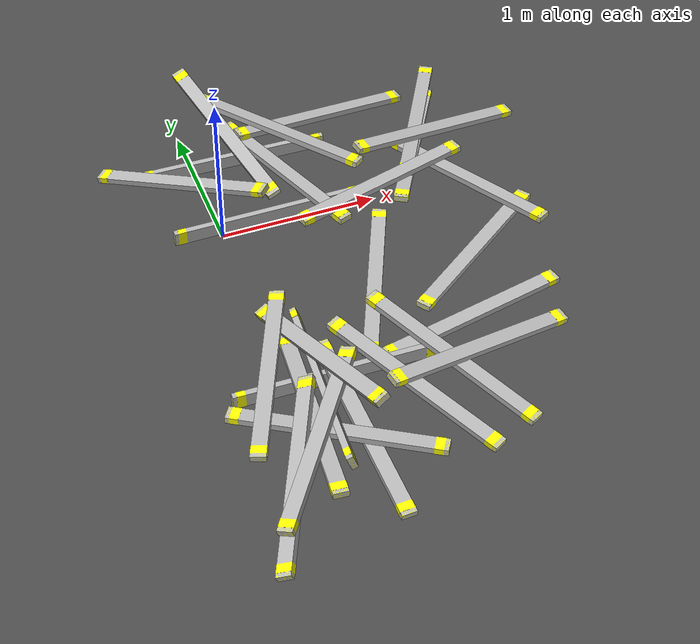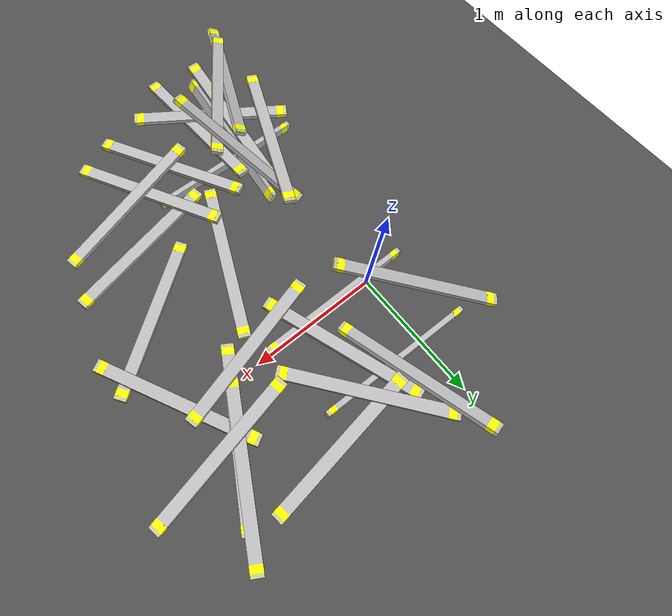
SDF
<sdf version="1.6">
 <world name="default">
  <model name="ground_plane">
   <static>1</static>
   <link name="link">
    <collision name="collision">
     <geometry><plane><normal>0 0 1</normal><size>100 100</size></plane></geometry>
     <surface><friction><ode><mu>100</mu><mu2>50</mu2></ode></friction></surface>
    </collision>
    <visual name="visual">
     <cast_shadows>0</cast_shadows>
     <geometry><plane><normal>0 0 1</normal><size>100 100</size></plane></geometry>
     <material>
      <script><uri>file://media/materials/scripts/gazebo.material</uri><name>Gazebo/Grey</name></script>
     </material>
    </visual>
   </link>
  </model>
  <model name="asphalt_plane">
   <static>1</static>
   <link name="link">
    <collision name="collision"><geometry><box><size>20 20 0.1</size></box></geometry></collision>
    <visual name="visual">
     <cast_shadows>0</cast_shadows>
     <geometry><box><size>20 20 0.1</size></box></geometry>
     <material>
      <script>
       <uri>model://asphalt_plane/materials/scripts</uri>
       <uri>model://asphalt_plane/materials/textures</uri>
       <name>vrc/asphalt</name>
      </script>
     </material>
    </visual>
   </link>
   <pose>0.013797 -0.037077 0 0 -0 0</pose>
  </model>
  <model name="lumber_2x4x48">
   <link name="link">
    <inertial>
     <mass>1.4111</mass>
     <inertia><ixx>0.0011</ixx><ixy>0</ixy><ixz>0</ixz><iyy>0.1771</iyy><iyz>0</iyz><izz>0.1763</izz></inertia>
    </inertial>
    <collision name="collision">
     <geometry><box><size>1.2192 0.038 0.0888</size></box></geometry>
     <surface>
      <bounce><restitution_coefficient>0.01</restitution_coefficient><threshold>5</threshold></bounce>
      <friction><ode><mu>5</mu><mu2>5</mu2></ode></friction>
      <contact>
       <ode>
        <soft_cfm>0.001</soft_cfm>
        <kp>10000</kp>
        <kd>1000</kd>
        <max_vel>0.01</max_vel>
        <min_depth>0.001</min_depth>
       </ode>
      </contact>
     </surface>
    </collision>
    <visual name="visual">
     <geometry><mesh><uri>model://drc_practice_2x4/meshes/2x4x48.dae</uri><scale>1 1 1</scale></mesh></geometry>
    </visual>
   </link>
   <pose>0.299007 -0.012991 0.092909 -0.00932 0.000108 0.00575</pose>
  </model>
  <model name="lumber_2x4x48_clone_1">
   <link name="link">
    <inertial>
     <mass>1.4111</mass>
     <inertia><ixx>0.0011</ixx><ixy>0</ixy><ixz>0</ixz><iyy>0.1771</iyy><iyz>0</iyz><izz>0.1763</izz></inertia>
    </inertial>
    <collision name="collision">
     <geometry><box><size>1.2192 0.038 0.0888</size></box></geometry>
     <surface>
      <bounce><restitution_coefficient>0.01</restitution_coefficient><threshold>5</threshold></bounce>
      <friction><ode><mu>5</mu><mu2>5</mu2></ode></friction>
      <contact>
       <ode>
        <soft_cfm>0.001</soft_cfm>
        <kp>10000</kp>
        <kd>1000</kd>
        <max_vel>0.01</max_vel>
        <min_depth>0.001</min_depth>
       </ode>
      </contact>
     </surface>
    </collision>
    <visual name="visual">
     <geometry><mesh><uri>model://drc_practice_2x4/meshes/2x4x48.dae</uri><scale>1 1 1</scale></mesh></geometry>
    </visual>
   </link>
   <pose>0.25999 0.579244 0.090453 -0.012529 -0.001397 -0.015484</pose>
  </model>
  <model name="lumber_2x4x48_clone_3_clone">
   <link name="link">
    <inertial>
     <mass>1.4111</mass>
     <inertia><ixx>0.0011</ixx><ixy>0</ixy><ixz>0</ixz><iyy>0.1771</iyy><iyz>0</iyz><izz>0.1763</izz></inertia>
    </inertial>
    <collision name="collision">
     <geometry><box><size>1.2192 0.038 0.0888</size></box></geometry>
     <surface>
      <bounce><restitution_coefficient>0.01</restitution_coefficient><threshold>5</threshold></bounce>
      <friction><ode><mu>5</mu><mu2>5</mu2></ode></friction>
      <contact>
       <ode>
        <soft_cfm>0.001</soft_cfm>
        <kp>10000</kp>
        <kd>1000</kd>
        <max_vel>0.01</max_vel>
        <min_depth>0.001</min_depth>
       </ode>
      </contact>
     </surface>
    </collision>
    <visual name="visual">
     <geometry><mesh><uri>model://drc_practice_2x4/meshes/2x4x48.dae</uri><scale>1 1 1</scale></mesh></geometry>
    </visual>
   </link>
   <pose>-0.172854 0.276097 0.26499 1.6423 -0.254557 -0.791706</pose>
  </model>
  <model name="lumber_2x4x48_clone_3_clone_0_clone_0_clone_0">
   <link name="link">
    <inertial>
     <mass>1.4111</mass>
     <inertia><ixx>0.0011</ixx><ixy>0</ixy><ixz>0</ixz><iyy>0.1771</iyy><iyz>0</iyz><izz>0.1763</izz></inertia>
    </inertial>
    <collision name="collision">
     <geometry><box><size>1.2192 0.038 0.0888</size></box></geometry>
     <surface>
      <bounce><restitution_coefficient>0.01</restitution_coefficient><threshold>5</threshold></bounce>
      <friction><ode><mu>5</mu><mu2>5</mu2></ode></friction>
      <contact>
       <ode>
        <soft_cfm>0.001</soft_cfm>
        <kp>10000</kp>
        <kd>1000</kd>
        <max_vel>0.01</max_vel>
        <min_depth>0.001</min_depth>
       </ode>
      </contact>
     </surface>
    </collision>
    <visual name="visual">
     <geometry><mesh><uri>model://drc_practice_2x4/meshes/2x4x48.dae</uri><scale>1 1 1</scale></mesh></geometry>
    </visual>
   </link>
   <pose>0.066796 -1.82478 0.143012 1.62543 0.031886 2.56916</pose>
  </model>
  <model name="lumber_2x4x48_clone_0_clone_0">
   <link name="link">
    <inertial>
     <mass>1.4111</mass>
     <inertia><ixx>0.0011</ixx><ixy>0</ixy><ixz>0</ixz><iyy>0.1771</iyy><iyz>0</iyz><izz>0.1763</izz></inertia>
    </inertial>
    <collision name="collision">
     <geometry><box><size>1.2192 0.038 0.0888</size></box></geometry>
     <surface>
      <bounce><restitution_coefficient>0.01</restitution_coefficient><threshold>5</threshold></bounce>
      <friction><ode><mu>5</mu><mu2>5</mu2></ode></friction>
      <contact>
       <ode>
        <soft_cfm>0.001</soft_cfm>
        <kp>10000</kp>
        <kd>1000</kd>
        <max_vel>0.01</max_vel>
        <min_depth>0.001</min_depth>
       </ode>
      </contact>
     </surface>
    </collision>
    <visual name="visual">
     <geometry><mesh><uri>model://drc_practice_2x4/meshes/2x4x48.dae</uri><scale>1 1 1</scale></mesh></geometry>
    </visual>
   </link>
   <pose>0.227246 -1.40204 0.090241 -0.041537 0.000696 -0.018359</pose>
  </model>
  <model name="lumber_2x4x48_clone_3_clone_0_clone_1_clone_clone">
   <link name="link">
    <inertial>
     <mass>1.4111</mass>
     <inertia><ixx>0.0011</ixx><ixy>0</ixy><ixz>0</ixz><iyy>0.1771</iyy><iyz>0</iyz><izz>0.1763</izz></inertia>
    </inertial>
    <collision name="collision">
     <geometry><box><size>1.2192 0.038 0.0888</size></box></geometry>
     <surface>
      <bounce><restitution_coefficient>0.01</restitution_coefficient><threshold>5</threshold></bounce>
      <friction><ode><mu>5</mu><mu2>5</mu2></ode></friction>
      <contact>
       <ode>
        <soft_cfm>0.001</soft_cfm>
        <kp>10000</kp>
        <kd>1000</kd>
        <max_vel>0.01</max_vel>
        <min_depth>0.001</min_depth>
       </ode>
      </contact>
     </surface>
    </collision>
    <visual name="visual">
     <geometry><mesh><uri>model://drc_practice_2x4/meshes/2x4x48.dae</uri><scale>1 1 1</scale></mesh></geometry>
    </visual>
   </link>
   <pose>0.094337 -1.5196 0.184237 -0.347411 0.075949 1.4809</pose>
  </model>
  <model name="lumber_2x4x48_clone_3_clone_0_clone_clone_0">
   <link name="link">
    <inertial>
     <mass>1.4111</mass>
     <inertia><ixx>0.0011</ixx><ixy>0</ixy><ixz>0</ixz><iyy>0.1771</iyy><iyz>0</iyz><izz>0.1763</izz></inertia>
    </inertial>
    <collision name="collision">
     <geometry><box><size>1.2192 0.038 0.0888</size></box></geometry>
     <surface>
      <bounce><restitution_coefficient>0.01</restitution_coefficient><threshold>5</threshold></bounce>
      <friction><ode><mu>5</mu><mu2>5</mu2></ode></friction>
      <contact>
       <ode>
        <soft_cfm>0.001</soft_cfm>
        <kp>10000</kp>
        <kd>1000</kd>
        <max_vel>0.01</max_vel>
        <min_depth>0.001</min_depth>
       </ode>
      </contact>
     </surface>
    </collision>
    <visual name="visual">
     <geometry><mesh><uri>model://drc_practice_2x4/meshes/2x4x48.dae</uri><scale>1 1 1</scale></mesh></geometry>
    </visual>
   </link>
   <pose>1.39216 -0.712462 0.067236 1.56188 0.000579 0.613629</pose>
  </model>
  <model name="lumber_2x4x48_clone_3_clone_0_clone_1_clone_0">
   <link name="link">
    <inertial>
     <mass>1.4111</mass>
     <inertia><ixx>0.0011</ixx><ixy>0</ixy><ixz>0</ixz><iyy>0.1771</iyy><iyz>0</iyz><izz>0.1763</izz></inertia>
    </inertial>
    <collision name="collision">
     <geometry><box><size>1.2192 0.038 0.0888</size></box></geometry>
     <surface>
      <bounce><restitution_coefficient>0.01</restitution_coefficient><threshold>5</threshold></bounce>
      <friction><ode><mu>5</mu><mu2>5</mu2></ode></friction>
      <contact>
       <ode>
        <soft_cfm>0.001</soft_cfm>
        <kp>10000</kp>
        <kd>1000</kd>
        <max_vel>0.01</max_vel>
        <min_depth>0.001</min_depth>
       </ode>
      </contact>
     </surface>
    </collision>
    <visual name="visual">
     <geometry><mesh><uri>model://drc_practice_2x4/meshes/2x4x48.dae</uri><scale>1 1 1</scale></mesh></geometry>
    </visual>
   </link>
   <pose>0.258197 0.743727 0.194585 1.27514 -0.16935 1.8022</pose>
  </model>
  <model name="lumber_2x4x48_clone_3_clone_0_clone_1_clone_1">
   <link name="link">
    <inertial>
     <mass>1.4111</mass>
     <inertia><ixx>0.0011</ixx><ixy>0</ixy><ixz>0</ixz><iyy>0.1771</iyy><iyz>0</iyz><izz>0.1763</izz></inertia>
    </inertial>
    <collision name="collision">
     <geometry><box><size>1.2192 0.038 0.0888</size></box></geometry>
     <surface>
      <bounce><restitution_coefficient>0.01</restitution_coefficient><threshold>5</threshold></bounce>
      <friction><ode><mu>5</mu><mu2>5</mu2></ode></friction>
      <contact>
       <ode>
        <soft_cfm>0.001</soft_cfm>
        <kp>10000</kp>
        <kd>1000</kd>
        <max_vel>0.01</max_vel>
        <min_depth>0.001</min_depth>
       </ode>
      </contact>
     </surface>
    </collision>
    <visual name="visual">
     <geometry><mesh><uri>model://drc_practice_2x4/meshes/2x4x48.dae</uri><scale>1 1 1</scale></mesh></geometry>
    </visual>
   </link>
   <pose>-0.021869 -1.67403 0.169069 -1.5655 -0.063382 -1.66936</pose>
  </model>
  <model name="lumber_2x4x48_clone_3_clone_0_clone_1_clone_2">
   <link name="link">
    <inertial>
     <mass>1.4111</mass>
     <inertia><ixx>0.0011</ixx><ixy>0</ixy><ixz>0</ixz><iyy>0.1771</iyy><iyz>0</iyz><izz>0.1763</izz></inertia>
    </inertial>
    <collision name="collision">
     <geometry><box><size>1.2192 0.038 0.0888</size></box></geometry>
     <surface>
      <bounce><restitution_coefficient>0.01</restitution_coefficient><threshold>5</threshold></bounce>
      <friction><ode><mu>5</mu><mu2>5</mu2></ode></friction>
      <contact>
       <ode>
        <soft_cfm>0.001</soft_cfm>
        <kp>10000</kp>
        <kd>1000</kd>
        <max_vel>0.01</max_vel>
        <min_depth>0.001</min_depth>
       </ode>
      </contact>
     </surface>
    </collision>
    <visual name="visual">
     <geometry><mesh><uri>model://drc_practice_2x4/meshes/2x4x48.dae</uri><scale>1 1 1</scale></mesh></geometry>
    </visual>
   </link>
   <pose>0.219422 -1.81781 0.115669 -1.56573 0.079979 -1.53668</pose>
  </model>
  <model name="lumber_2x4x48_clone_3_clone_0_clone_clone_0_clone_0_clone">
   <link name="link">
    <inertial>
     <mass>1.4111</mass>
     <inertia><ixx>0.0011</ixx><ixy>0</ixy><ixz>0</ixz><iyy>0.1771</iyy><iyz>0</iyz><izz>0.1763</izz></inertia>
    </inertial>
    <collision name="collision">
     <geometry><box><size>1.2192 0.038 0.0888</size></box></geometry>
     <surface>
      <bounce><restitution_coefficient>0.01</restitution_coefficient><threshold>5</threshold></bounce>
      <friction><ode><mu>5</mu><mu2>5</mu2></ode></friction>
      <contact>
       <ode>
        <soft_cfm>0.001</soft_cfm>
        <kp>10000</kp>
        <kd>1000</kd>
        <max_vel>0.01</max_vel>
        <min_depth>0.001</min_depth>
       </ode>
      </contact>
     </surface>
    </collision>
    <visual name="visual">
     <geometry><mesh><uri>model://drc_practice_2x4/meshes/2x4x48.dae</uri><scale>1 1 1</scale></mesh></geometry>
    </visual>
   </link>
   <pose>0.588981 0.631081 0.202058 -1.67338 0.015783 -0.900955</pose>
  </model>
  <model name="lumber_2x4x48_clone_3_clone_0_clone_clone_0_clone_0_clone_0">
   <link name="link">
    <inertial>
     <mass>1.4111</mass>
     <inertia><ixx>0.0011</ixx><ixy>0</ixy><ixz>0</ixz><iyy>0.1771</iyy><iyz>0</iyz><izz>0.1763</izz></inertia>
    </inertial>
    <collision name="collision">
     <geometry><box><size>1.2192 0.038 0.0888</size></box></geometry>
     <surface>
      <bounce><restitution_coefficient>0.01</restitution_coefficient><threshold>5</threshold></bounce>
      <friction><ode><mu>5</mu><mu2>5</mu2></ode></friction>
      <contact>
       <ode>
        <soft_cfm>0.001</soft_cfm>
        <kp>10000</kp>
        <kd>1000</kd>
        <max_vel>0.01</max_vel>
        <min_depth>0.001</min_depth>
       </ode>
      </contact>
     </surface>
    </collision>
    <visual name="visual">
     <geometry><mesh><uri>model://drc_practice_2x4/meshes/2x4x48.dae</uri><scale>1 1 1</scale></mesh></geometry>
    </visual>
   </link>
   <pose>0.133435 -1.36697 0.266812 -1.24247 -0.261678 -1.31748</pose>
  </model>
  <model name="lumber_2x4x48_clone_3_clone_0_clone_clone_0_clone_0_clone_4">
   <link name="link">
    <inertial>
     <mass>1.4111</mass>
     <inertia><ixx>0.0011</ixx><ixy>0</ixy><ixz>0</ixz><iyy>0.1771</iyy><iyz>0</iyz><izz>0.1763</izz></inertia>
    </inertial>
    <collision name="collision">
     <geometry><box><size>1.2192 0.038 0.0888</size></box></geometry>
     <surface>
      <bounce><restitution_coefficient>0.01</restitution_coefficient><threshold>5</threshold></bounce>
      <friction><ode><mu>5</mu><mu2>5</mu2></ode></friction>
      <contact>
       <ode>
        <soft_cfm>0.001</soft_cfm>
        <kp>10000</kp>
        <kd>1000</kd>
        <max_vel>0.01</max_vel>
        <min_depth>0.001</min_depth>
       </ode>
      </contact>
     </surface>
    </collision>
    <visual name="visual">
     <geometry><mesh><uri>model://drc_practice_2x4/meshes/2x4x48.dae</uri><scale>1 1 1</scale></mesh></geometry>
    </visual>
   </link>
   <pose>0.862667 -1.53586 0.13644 -1.57388 0.113121 -1.09414</pose>
  </model>
  <model name="lumber_2x4x48_clone_3_clone_0_clone_clone_0_clone_0_clone_5">
   <link name="link">
    <inertial>
     <mass>1.4111</mass>
     <inertia><ixx>0.0011</ixx><ixy>0</ixy><ixz>0</ixz><iyy>0.1771</iyy><iyz>0</iyz><izz>0.1763</izz></inertia>
    </inertial>
    <collision name="collision">
     <geometry><box><size>1.2192 0.038 0.0888</size></box></geometry>
     <surface>
      <bounce><restitution_coefficient>0.01</restitution_coefficient><threshold>5</threshold></bounce>
      <friction><ode><mu>5</mu><mu2>5</mu2></ode></friction>
      <contact>
       <ode>
        <soft_cfm>0.001</soft_cfm>
        <kp>10000</kp>
        <kd>1000</kd>
        <max_vel>0.01</max_vel>
        <min_depth>0.001</min_depth>
       </ode>
      </contact>
     </surface>
    </collision>
    <visual name="visual">
     <geometry><mesh><uri>model://drc_practice_2x4/meshes/2x4x48.dae</uri><scale>1 1 1</scale></mesh></geometry>
    </visual>
   </link>
   <pose>1.59757 -0.113225 0.088608 -1.58551 -0.037542 -1.08196</pose>
  </model>
  <model name="lumber_2x4x48_clone_3_clone_0_clone_clone_0_clone_0_clone_8">
   <link name="link">
    <inertial>
     <mass>1.4111</mass>
     <inertia><ixx>0.0011</ixx><ixy>0</ixy><ixz>0</ixz><iyy>0.1771</iyy><iyz>0</iyz><izz>0.1763</izz></inertia>
    </inertial>
    <collision name="collision">
     <geometry><box><size>1.2192 0.038 0.0888</size></box></geometry>
     <surface>
      <bounce><restitution_coefficient>0.01</restitution_coefficient><threshold>5</threshold></bounce>
      <friction><ode><mu>5</mu><mu2>5</mu2></ode></friction>
      <contact>
       <ode>
        <soft_cfm>0.001</soft_cfm>
        <kp>10000</kp>
        <kd>1000</kd>
        <max_vel>0.01</max_vel>
        <min_depth>0.001</min_depth>
       </ode>
      </contact>
     </surface>
    </collision>
    <visual name="visual">
     <geometry><mesh><uri>model://drc_practice_2x4/meshes/2x4x48.dae</uri><scale>1 1 1</scale></mesh></geometry>
    </visual>
   </link>
   <pose>0.592085 -1.63666 0.128528 1.62251 0.096517 -1.08639</pose>
  </model>
  <model name="lumber_2x4x48_clone_3_clone_0_clone_clone_0_clone_0_clone_10">
   <link name="link">
    <inertial>
     <mass>1.4111</mass>
     <inertia><ixx>0.0011</ixx><ixy>0</ixy><ixz>0</ixz><iyy>0.1771</iyy><iyz>0</iyz><izz>0.1763</izz></inertia>
    </inertial>
    <collision name="collision">
     <geometry><box><size>1.2192 0.038 0.0888</size></box></geometry>
     <surface>
      <bounce><restitution_coefficient>0.01</restitution_coefficient><threshold>5</threshold></bounce>
      <friction><ode><mu>5</mu><mu2>5</mu2></ode></friction>
      <contact>
       <ode>
        <soft_cfm>0.001</soft_cfm>
        <kp>10000</kp>
        <kd>1000</kd>
        <max_vel>0.01</max_vel>
        <min_depth>0.001</min_depth>
       </ode>
      </contact>
     </surface>
    </collision>
    <visual name="visual">
     <geometry><mesh><uri>model://drc_practice_2x4/meshes/2x4x48.dae</uri><scale>1 1 1</scale></mesh></geometry>
    </visual>
   </link>
   <pose>0.505373 0.28928 0.150394 -1.57471 -0.011795 -1.2269</pose>
  </model>
  <model name="lumber_2x4x48_clone_3_clone_0_clone_clone_0_clone_0_clone_11">
   <link name="link">
    <inertial>
     <mass>1.4111</mass>
     <inertia><ixx>0.0011</ixx><ixy>0</ixy><ixz>0</ixz><iyy>0.1771</iyy><iyz>0</iyz><izz>0.1763</izz></inertia>
    </inertial>
    <collision name="collision">
     <geometry><box><size>1.2192 0.038 0.0888</size></box></geometry>
     <surface>
      <bounce><restitution_coefficient>0.01</restitution_coefficient><threshold>5</threshold></bounce>
      <friction><ode><mu>5</mu><mu2>5</mu2></ode></friction>
      <contact>
       <ode>
        <soft_cfm>0.001</soft_cfm>
        <kp>10000</kp>
        <kd>1000</kd>
        <max_vel>0.01</max_vel>
        <min_depth>0.001</min_depth>
       </ode>
      </contact>
     </surface>
    </collision>
    <visual name="visual">
     <geometry><mesh><uri>model://drc_practice_2x4/meshes/2x4x48.dae</uri><scale>1 1 1</scale></mesh></geometry>
    </visual>
   </link>
   <pose>-0.236157 -2.03263 0.162947 2.02535 0.106773 -2.00985</pose>
  </model>
  <model name="lumber_2x4x48_clone_3_clone_0_clone_clone_0_clone_0_clone_11_clone">
   <link name="link">
    <inertial>
     <mass>1.4111</mass>
     <inertia><ixx>0.0011</ixx><ixy>0</ixy><ixz>0</ixz><iyy>0.1771</iyy><iyz>0</iyz><izz>0.1763</izz></inertia>
    </inertial>
    <collision name="collision">
     <geometry><box><size>1.2192 0.038 0.0888</size></box></geometry>
     <surface>
      <bounce><restitution_coefficient>0.01</restitution_coefficient><threshold>5</threshold></bounce>
      <friction><ode><mu>5</mu><mu2>5</mu2></ode></friction>
      <contact>
       <ode>
        <soft_cfm>0.001</soft_cfm>
        <kp>10000</kp>
        <kd>1000</kd>
        <max_vel>0.01</max_vel>
        <min_depth>0.001</min_depth>
       </ode>
      </contact>
     </surface>
    </collision>
    <visual name="visual">
     <geometry><mesh><uri>model://drc_practice_2x4/meshes/2x4x48.dae</uri><scale>1 1 1</scale></mesh></geometry>
    </visual>
   </link>
   <pose>-0.06554 -1.90694 0.243729 1.84007 0.077394 -2.20261</pose>
  </model>
  <model name="lumber_2x4x48_clone_3_clone_0_clone_clone_0_clone_0_clone_11_clone_4">
   <link name="link">
    <inertial>
     <mass>1.4111</mass>
     <inertia><ixx>0.0011</ixx><ixy>0</ixy><ixz>0</ixz><iyy>0.1771</iyy><iyz>0</iyz><izz>0.1763</izz></inertia>
    </inertial>
    <collision name="collision">
     <geometry><box><size>1.2192 0.038 0.0888</size></box></geometry>
     <surface>
      <bounce><restitution_coefficient>0.01</restitution_coefficient><threshold>5</threshold></bounce>
      <friction><ode><mu>5</mu><mu2>5</mu2></ode></friction>
      <contact>
       <ode>
        <soft_cfm>0.001</soft_cfm>
        <kp>10000</kp>
        <kd>1000</kd>
        <max_vel>0.01</max_vel>
        <min_depth>0.001</min_depth>
       </ode>
      </contact>
     </surface>
    </collision>
    <visual name="visual">
     <geometry><mesh><uri>model://drc_practice_2x4/meshes/2x4x48.dae</uri><scale>1 1 1</scale></mesh></geometry>
    </visual>
   </link>
   <pose>-0.154916 -1.34309 0.1986 -1.47438 0.007839 -1.98491</pose>
  </model>
  <model name="lumber_2x4x48_clone_3_clone_0_clone_clone_0_clone_0_clone_11_clone_11">
   <link name="link">
    <inertial>
     <mass>1.4111</mass>
     <inertia><ixx>0.0011</ixx><ixy>0</ixy><ixz>0</ixz><iyy>0.1771</iyy><iyz>0</iyz><izz>0.1763</izz></inertia>
    </inertial>
    <collision name="collision">
     <geometry><box><size>1.2192 0.038 0.0888</size></box></geometry>
     <surface>
      <bounce><restitution_coefficient>0.01</restitution_coefficient><threshold>5</threshold></bounce>
      <friction><ode><mu>5</mu><mu2>5</mu2></ode></friction>
      <contact>
       <ode>
        <soft_cfm>0.001</soft_cfm>
        <kp>10000</kp>
        <kd>1000</kd>
        <max_vel>0.01</max_vel>
        <min_depth>0.001</min_depth>
       </ode>
      </contact>
     </surface>
    </collision>
    <visual name="visual">
     <geometry><mesh><uri>model://drc_practice_2x4/meshes/2x4x48.dae</uri><scale>1 1 1</scale></mesh></geometry>
    </visual>
   </link>
   <pose>1.41098 0.311777 0.104236 1.5783 -0.059095 -2.10163</pose>
  </model>
  <model name="lumber_2x4x48_clone_3_clone_0_clone_clone_0_clone_0_clone_11_clone_12">
   <link name="link">
    <inertial>
     <mass>1.4111</mass>
     <inertia><ixx>0.0011</ixx><ixy>0</ixy><ixz>0</ixz><iyy>0.1771</iyy><iyz>0</iyz><izz>0.1763</izz></inertia>
    </inertial>
    <collision name="collision">
     <geometry><box><size>1.2192 0.038 0.0888</size></box></geometry>
     <surface>
      <bounce><restitution_coefficient>0.01</restitution_coefficient><threshold>5</threshold></bounce>
      <friction><ode><mu>5</mu><mu2>5</mu2></ode></friction>
      <contact>
       <ode>
        <soft_cfm>0.001</soft_cfm>
        <kp>10000</kp>
        <kd>1000</kd>
        <max_vel>0.01</max_vel>
        <min_depth>0.001</min_depth>
       </ode>
      </contact>
     </surface>
    </collision>
    <visual name="visual">
     <geometry><mesh><uri>model://drc_practice_2x4/meshes/2x4x48.dae</uri><scale>1 1 1</scale></mesh></geometry>
    </visual>
   </link>
   <pose>1.51603 0.516751 0.12597 1.57054 -0.058378 -2.0839</pose>
  </model>
  <model name="lumber_2x4x48_clone_3_clone_0_clone_clone_0_clone_0_clone_11_clone_13">
   <link name="link">
    <inertial>
     <mass>1.4111</mass>
     <inertia><ixx>0.0011</ixx><ixy>0</ixy><ixz>0</ixz><iyy>0.1771</iyy><iyz>0</iyz><izz>0.1763</izz></inertia>
    </inertial>
    <collision name="collision">
     <geometry><box><size>1.2192 0.038 0.0888</size></box></geometry>
     <surface>
      <bounce><restitution_coefficient>0.01</restitution_coefficient><threshold>5</threshold></bounce>
      <friction><ode><mu>5</mu><mu2>5</mu2></ode></friction>
      <contact>
       <ode>
        <soft_cfm>0.001</soft_cfm>
        <kp>10000</kp>
        <kd>1000</kd>
        <max_vel>0.01</max_vel>
        <min_depth>0.001</min_depth>
       </ode>
      </contact>
     </surface>
    </collision>
    <visual name="visual">
     <geometry><mesh><uri>model://drc_practice_2x4/meshes/2x4x48.dae</uri><scale>1 1 1</scale></mesh></geometry>
    </visual>
   </link>
   <pose>0.717006 -0.749436 0.067655 1.5708 -0 -1.99454</pose>
  </model>
  <model name="lumber_2x4x48_clone_3_clone_0_clone_clone_0_clone_0_clone_11_clone_14_clone_clone">
   <link name="link">
    <inertial>
     <mass>1.4111</mass>
     <inertia><ixx>0.0011</ixx><ixy>0</ixy><ixz>0</ixz><iyy>0.1771</iyy><iyz>0</iyz><izz>0.1763</izz></inertia>
    </inertial>
    <collision name="collision">
     <geometry><box><size>1.2192 0.038 0.0888</size></box></geometry>
     <surface>
      <bounce><restitution_coefficient>0.01</restitution_coefficient><threshold>5</threshold></bounce>
      <friction><ode><mu>5</mu><mu2>5</mu2></ode></friction>
      <contact>
       <ode>
        <soft_cfm>0.001</soft_cfm>
        <kp>10000</kp>
        <kd>1000</kd>
        <max_vel>0.01</max_vel>
        <min_depth>0.001</min_depth>
       </ode>
      </contact>
     </surface>
    </collision>
    <visual name="visual">
     <geometry><mesh><uri>model://drc_practice_2x4/meshes/2x4x48.dae</uri><scale>1 1 1</scale></mesh></geometry>
    </visual>
   </link>
   <pose>1.13845 -1.22444 0.067746 1.57363 -0.00016 -2.93919</pose>
  </model>
  <model name="lumber_2x4x48_clone_3_clone_0_clone_clone_0_clone_0_clone_11_clone_14_clone_clone_0">
   <link name="link">
    <inertial>
     <mass>1.4111</mass>
     <inertia><ixx>0.0011</ixx><ixy>0</ixy><ixz>0</ixz><iyy>0.1771</iyy><iyz>0</iyz><izz>0.1763</izz></inertia>
    </inertial>
    <collision name="collision">
     <geometry><box><size>1.2192 0.038 0.0888</size></box></geometry>
     <surface>
      <bounce><restitution_coefficient>0.01</restitution_coefficient><threshold>5</threshold></bounce>
      <friction><ode><mu>5</mu><mu2>5</mu2></ode></friction>
      <contact>
       <ode>
        <soft_cfm>0.001</soft_cfm>
        <kp>10000</kp>
        <kd>1000</kd>
        <max_vel>0.01</max_vel>
        <min_depth>0.001</min_depth>
       </ode>
      </contact>
     </surface>
    </collision>
    <visual name="visual">
     <geometry><mesh><uri>model://drc_practice_2x4/meshes/2x4x48.dae</uri><scale>1 1 1</scale></mesh></geometry>
    </visual>
   </link>
   <pose>1.02169 -0.075618 0.196206 1.56748 0.007577 -2.87736</pose>
  </model>
  <model name="lumber_2x4x48_clone_3_clone_0_clone_clone_0_clone_0_clone_11_clone_14_clone_clone_1">
   <link name="link">
    <inertial>
     <mass>1.4111</mass>
     <inertia><ixx>0.0011</ixx><ixy>0</ixy><ixz>0</ixz><iyy>0.1771</iyy><iyz>0</iyz><izz>0.1763</izz></inertia>
    </inertial>
    <collision name="collision">
     <geometry><box><size>1.2192 0.038 0.0888</size></box></geometry>
     <surface>
      <bounce><restitution_coefficient>0.01</restitution_coefficient><threshold>5</threshold></bounce>
      <friction><ode><mu>5</mu><mu2>5</mu2></ode></friction>
      <contact>
       <ode>
        <soft_cfm>0.001</soft_cfm>
        <kp>10000</kp>
        <kd>1000</kd>
        <max_vel>0.01</max_vel>
        <min_depth>0.001</min_depth>
       </ode>
      </contact>
     </surface>
    </collision>
    <visual name="visual">
     <geometry><mesh><uri>model://drc_practice_2x4/meshes/2x4x48.dae</uri><scale>1 1 1</scale></mesh></geometry>
    </visual>
   </link>
   <pose>0.924023 0.778938 0.127926 1.604 -0.097649 -3.0045</pose>
  </model>
  <model name="lumber_2x4x48_clone_3_clone_0_clone_clone_0_clone_0_clone_11_clone_14_clone_clone_6">
   <link name="link">
    <inertial>
     <mass>1.4111</mass>
     <inertia><ixx>0.0011</ixx><ixy>0</ixy><ixz>0</ixz><iyy>0.1771</iyy><iyz>0</iyz><izz>0.1763</izz></inertia>
    </inertial>
    <collision name="collision">
     <geometry><box><size>1.2192 0.038 0.0888</size></box></geometry>
     <surface>
      <bounce><restitution_coefficient>0.01</restitution_coefficient><threshold>5</threshold></bounce>
      <friction><ode><mu>5</mu><mu2>5</mu2></ode></friction>
      <contact>
       <ode>
        <soft_cfm>0.001</soft_cfm>
        <kp>10000</kp>
        <kd>1000</kd>
        <max_vel>0.01</max_vel>
        <min_depth>0.001</min_depth>
       </ode>
      </contact>
     </surface>
    </collision>
    <visual name="visual">
     <geometry><mesh><uri>model://drc_practice_2x4/meshes/2x4x48.dae</uri><scale>1 1 1</scale></mesh></geometry>
    </visual>
   </link>
   <pose>1.03741 -1.54119 0.150996 1.49066 -0.131407 -2.93585</pose>
  </model>
  <model name="lumber_2x4x48_clone_3_clone_0_clone_clone_0_clone_0_clone_11_clone_14_clone_clone_7">
   <link name="link">
    <inertial>
     <mass>1.4111</mass>
     <inertia><ixx>0.0011</ixx><ixy>0</ixy><ixz>0</ixz><iyy>0.1771</iyy><iyz>0</iyz><izz>0.1763</izz></inertia>
    </inertial>
    <collision name="collision">
     <geometry><box><size>1.2192 0.038 0.0888</size></box></geometry>
     <surface>
      <bounce><restitution_coefficient>0.01</restitution_coefficient><threshold>5</threshold></bounce>
      <friction><ode><mu>5</mu><mu2>5</mu2></ode></friction>
      <contact>
       <ode>
        <soft_cfm>0.001</soft_cfm>
        <kp>10000</kp>
        <kd>1000</kd>
        <max_vel>0.01</max_vel>
        <min_depth>0.001</min_depth>
       </ode>
      </contact>
     </surface>
    </collision>
    <visual name="visual">
     <geometry><mesh><uri>model://drc_practice_2x4/meshes/2x4x48.dae</uri><scale>1 1 1</scale></mesh></geometry>
    </visual>
   </link>
   <pose>1.56942 0.344184 0.156967 1.52664 -0.143925 -2.95965</pose>
  </model>
 </world>
</sdf>
